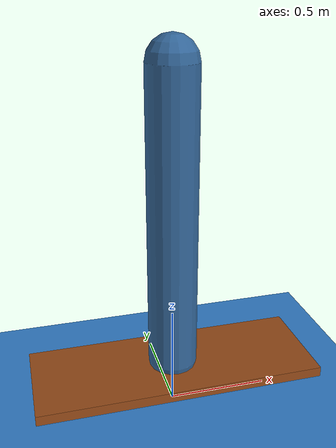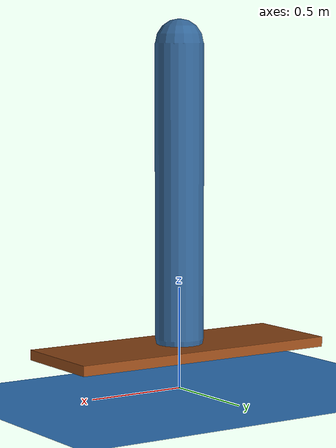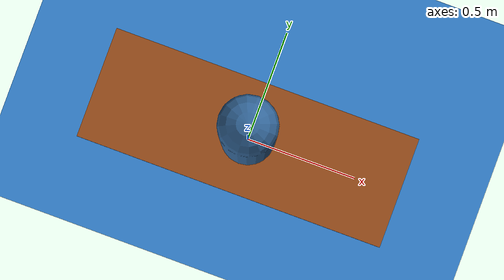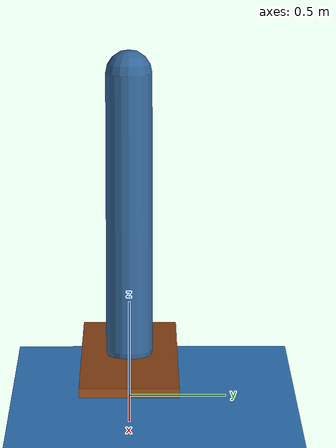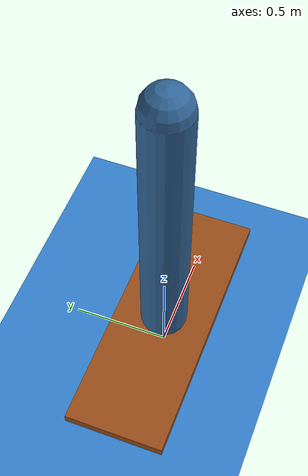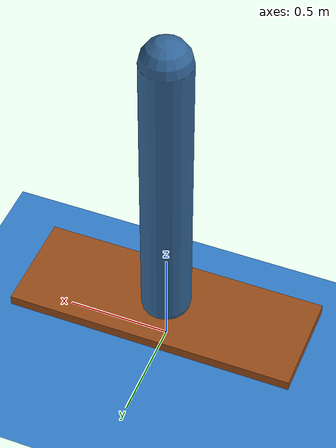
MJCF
<!--
  Pump Foil Rider - RIGID VERSION (no articulation)

  For testing physics without internal body dynamics.
  The rider is a single capsule welded to the board.
-->

<mujoco model="pump_foil_rigid">
  <compiler angle="radian"/>
  <option timestep="0.01" gravity="0 0 -9.81"/>

  <visual>
    <global offwidth="1920" offheight="1080"/>
    <quality shadowsize="2048"/>
  </visual>

  <asset>
    <material name="board" rgba="0.6 0.3 0.1 1"/>
    <material name="rider" rgba="0.2 0.4 0.6 1"/>
    <material name="water" rgba="0.2 0.5 0.8 0.3"/>
  </asset>

  <worldbody>
    <!-- Cameras -->
    <camera name="side" pos="0 5 1" xyaxes="-1 0 0 0 0 1" mode="trackcom"/>
    <camera name="front" pos="5 0 1" xyaxes="0 1 0 0 0 1" mode="trackcom"/>
    <camera name="iso" pos="3 3 2" xyaxes="-0.7 0.7 0 0 0 1" mode="trackcom"/>

    <!-- Water surface (visual only) -->
    <geom name="water_surface" type="plane" pos="0 0 0" size="10 10 0.01"
          material="water" contype="0" conaffinity="0"/>

    <!-- Board + Rigid Rider as single body -->
    <body name="board" pos="0 0 0.2">
      <freejoint name="board_joint"/>

      <!-- Board: 6kg -->
      <geom name="board_geom" type="box" size="0.7 0.25 0.025" mass="6"
            material="board"/>

      <!-- Rider as single rigid capsule: 80kg, 1.5m tall -->
      <!-- COM at about 0.8m above board -->
      <geom name="rider" type="capsule" fromto="0 0 0.05  0 0 1.5"
            size="0.12" mass="80" material="rider"/>

      <site name="mast_base" pos="0 0 -0.025" size="0.02"/>
    </body>
  </worldbody>

  <!-- Sensors -->
  <sensor>
    <framepos name="board_pos" objtype="body" objname="board"/>
    <framequat name="board_quat" objtype="body" objname="board"/>
    <framelinvel name="board_vel" objtype="body" objname="board"/>
    <frameangvel name="board_angvel" objtype="body" objname="board"/>
  </sensor>
</mujoco>
